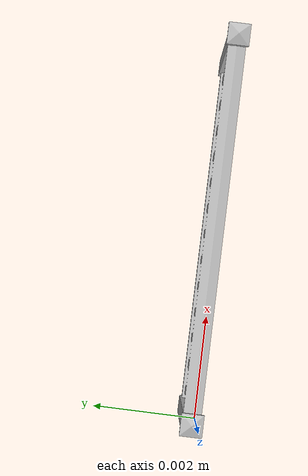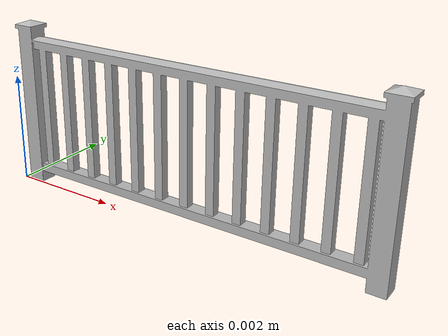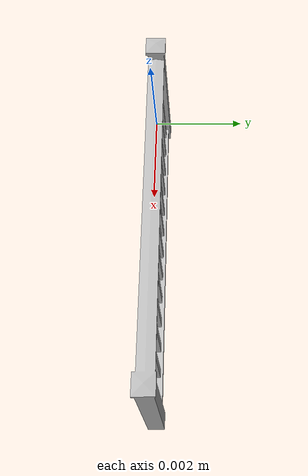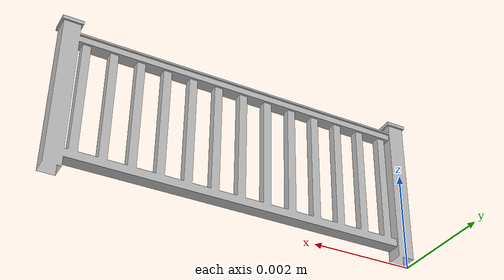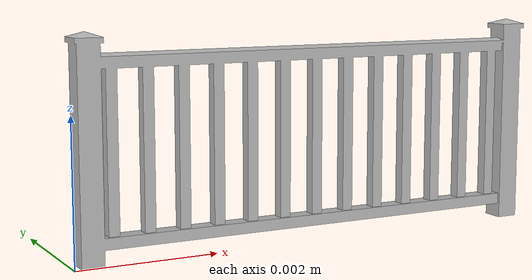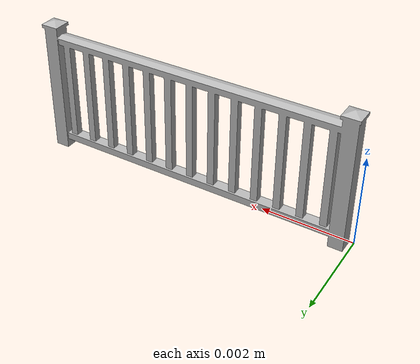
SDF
<?xml version="1.0" ?>
<sdf version="1.6">
  <model name="fence">
    <pose>0 0 0 0 0 0</pose>
    <static>true</static>
    <link name="body">
      <visual name="visual">
        <geometry>
          <mesh>
            <uri>model://fence/meshes/fence.dae</uri>
            <scale>0.0035 0.0035 0.0035</scale>
          </mesh>
        </geometry>
      </visual>
      <collision name="collision">
        <geometry>
          <mesh>
            <uri>model://fence/meshes/fence.dae</uri>
            <scale>0.0035 0.0035 0.0035</scale>
          </mesh>
        </geometry>
      </collision>
    </link>
  </model>
</sdf>
